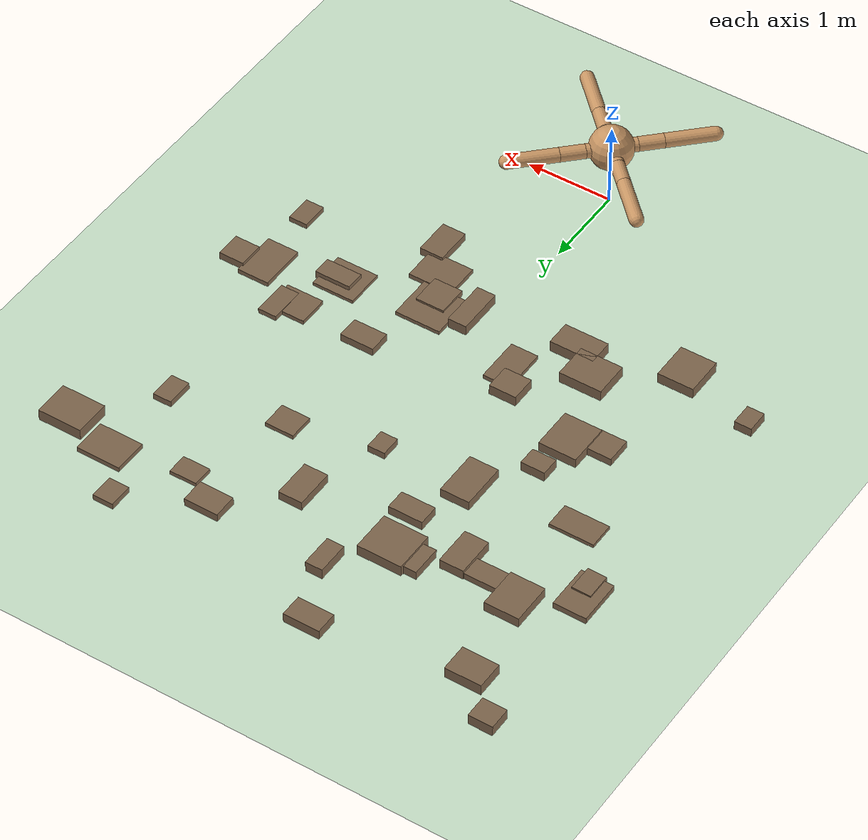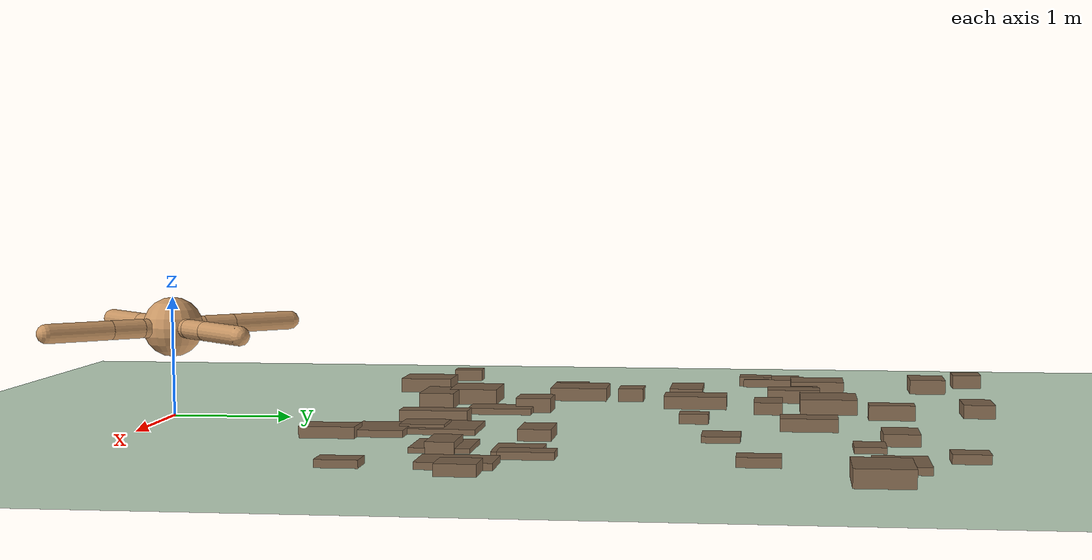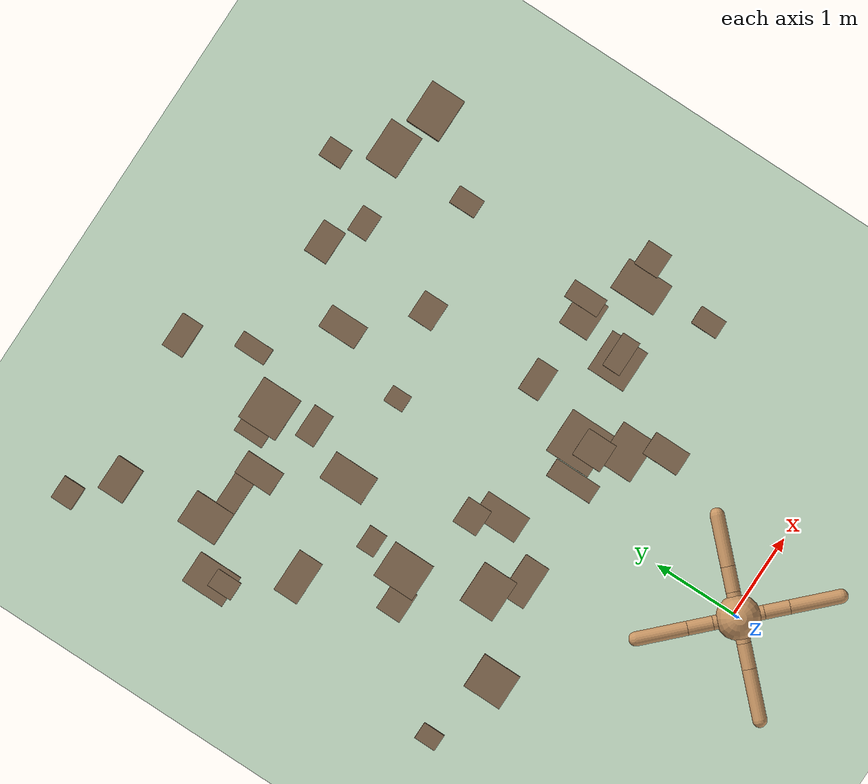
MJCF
<mujoco model="ant_rough">
  <compiler angle="degree" coordinate="local" inertiafromgeom="true"/>
  <option integrator="RK4" timestep="0.01"/>
  <custom>
    <numeric data="0.0 0.0 0.55 1.0 0.0 0.0 0.0 0.0 1.0 0.0 -1.0 0.0 -1.0 0.0 1.0" name="init_qpos"/>
  </custom>
  <default>
    <joint armature="1" damping="1" limited="true"/>
    <geom conaffinity="0" condim="3" density="5.0" friction="1 0.5 0.5" margin="0.01" rgba="0.8 0.6 0.4 1"/>
  </default>
  <asset>
    <texture builtin="gradient" height="100" rgb1="1 1 1" rgb2="0 0 0" type="skybox" width="100"/>
    <texture builtin="flat" height="1278" mark="cross" markrgb="1 1 1" name="texgeom" random="0.01"
             rgb1="0.8 0.6 0.4" rgb2="0.8 0.6 0.4" type="cube" width="127"/>
    <texture builtin="checker" height="100" name="texplane" rgb1="0 0 0" rgb2="0.8 0.8 0.8" type="2d" width="100"/>
    <material name="MatPlane" reflectance="0.5" shininess="1" specular="1" texrepeat="60 60" texture="texplane"/>
    <material name="geom" texture="texgeom" texuniform="true"/>
  </asset>
  <worldbody>
    <light cutoff="100" diffuse="1 1 1" dir="-0 0 -1.3" directional="true" exponent="1" pos="0 0 1.3" specular=".1 .1 .1"/>
    <geom conaffinity="1" condim="3" material="MatPlane" name="floor" pos="0 0 0" rgba="0.8 0.9 0.8 1" size="40 40 40" type="plane"/>
    <geom type="box" conaffinity="1" condim="3" pos="-0.75 6.73 0.057" size="0.21 0.13 0.057" rgba="0.50 0.40 0.30 1"/>
    <geom type="box" conaffinity="1" condim="3" pos="-2.06 1.82 0.063" size="0.21 0.23 0.063" rgba="0.50 0.40 0.30 1"/>
    <geom type="box" conaffinity="1" condim="3" pos="-2.88 6.83 0.062" size="0.14 0.13 0.062" rgba="0.50 0.40 0.30 1"/>
    <geom type="box" conaffinity="1" condim="3" pos="-1.90 3.17 0.046" size="0.18 0.15 0.046" rgba="0.50 0.40 0.30 1"/>
    <geom type="box" conaffinity="1" condim="3" pos="0.67 2.27 0.035" size="0.17 0.18 0.035" rgba="0.50 0.40 0.30 1"/>
    <geom type="box" conaffinity="1" condim="3" pos="1.71 2.60 0.046" size="0.21 0.11 0.046" rgba="0.50 0.40 0.30 1"/>
    <geom type="box" conaffinity="1" condim="3" pos="0.65 2.44 0.023" size="0.27 0.27 0.023" rgba="0.50 0.40 0.30 1"/>
    <geom type="box" conaffinity="1" condim="3" pos="1.85 3.18 0.025" size="0.22 0.18 0.025" rgba="0.50 0.40 0.30 1"/>
    <geom type="box" conaffinity="1" condim="3" pos="-2.27 4.22 0.022" size="0.26 0.15 0.022" rgba="0.50 0.40 0.30 1"/>
    <geom type="box" conaffinity="1" condim="3" pos="0.98 3.21 0.046" size="0.20 0.13 0.046" rgba="0.50 0.40 0.30 1"/>
    <geom type="box" conaffinity="1" condim="3" pos="2.82 5.76 0.067" size="0.26 0.21 0.067" rgba="0.50 0.40 0.30 1"/>
    <geom type="box" conaffinity="1" condim="3" pos="2.53 1.99 0.030" size="0.11 0.16 0.030" rgba="0.50 0.40 0.30 1"/>
    <geom type="box" conaffinity="1" condim="3" pos="-0.67 2.99 0.061" size="0.16 0.15 0.061" rgba="0.50 0.40 0.30 1"/>
    <geom type="box" conaffinity="1" condim="3" pos="0.26 2.28 0.060" size="0.11 0.28 0.060" rgba="0.50 0.40 0.30 1"/>
    <geom type="box" conaffinity="1" condim="3" pos="1.63 2.59 0.020" size="0.25 0.23 0.020" rgba="0.50 0.40 0.30 1"/>
    <geom type="box" conaffinity="1" condim="3" pos="1.37 5.74 0.024" size="0.16 0.12 0.024" rgba="0.50 0.40 0.30 1"/>
    <geom type="box" conaffinity="1" condim="3" pos="2.18 4.93 0.037" size="0.11 0.16 0.037" rgba="0.50 0.40 0.30 1"/>
    <geom type="box" conaffinity="1" condim="3" pos="-1.05 5.51 0.052" size="0.26 0.18 0.052" rgba="0.50 0.40 0.30 1"/>
    <geom type="box" conaffinity="1" condim="3" pos="-2.28 5.42 0.058" size="0.20 0.24 0.058" rgba="0.50 0.40 0.30 1"/>
    <geom type="box" conaffinity="1" condim="3" pos="-0.04 4.38 0.041" size="0.10 0.12 0.041" rgba="0.50 0.40 0.30 1"/>
    <geom type="box" conaffinity="1" condim="3" pos="-2.81 5.00 0.036" size="0.19 0.26 0.036" rgba="0.50 0.40 0.30 1"/>
    <geom type="box" conaffinity="1" condim="3" pos="-1.50 3.76 0.058" size="0.14 0.11 0.058" rgba="0.50 0.40 0.30 1"/>
    <geom type="box" conaffinity="1" condim="3" pos="-1.26 2.39 0.066" size="0.25 0.21 0.066" rgba="0.50 0.40 0.30 1"/>
    <geom type="box" conaffinity="1" condim="3" pos="2.23 5.92 0.029" size="0.26 0.20 0.029" rgba="0.50 0.40 0.30 1"/>
    <geom type="box" conaffinity="1" condim="3" pos="1.84 6.43 0.036" size="0.12 0.14 0.036" rgba="0.50 0.40 0.30 1"/>
    <geom type="box" conaffinity="1" condim="3" pos="-0.44 6.00 0.063" size="0.10 0.19 0.063" rgba="0.50 0.40 0.30 1"/>
    <geom type="box" conaffinity="1" condim="3" pos="-0.50 2.72 0.026" size="0.16 0.27 0.026" rgba="0.50 0.40 0.30 1"/>
    <geom type="box" conaffinity="1" condim="3" pos="-1.06 4.35 0.055" size="0.17 0.27 0.055" rgba="0.50 0.40 0.30 1"/>
    <geom type="box" conaffinity="1" condim="3" pos="2.77 2.88 0.045" size="0.15 0.15 0.045" rgba="0.50 0.40 0.30 1"/>
    <geom type="box" conaffinity="1" condim="3" pos="-2.78 4.85 0.045" size="0.11 0.15 0.045" rgba="0.50 0.40 0.30 1"/>
    <geom type="box" conaffinity="1" condim="3" pos="2.45 2.82 0.027" size="0.19 0.28 0.027" rgba="0.50 0.40 0.30 1"/>
    <geom type="box" conaffinity="1" condim="3" pos="-1.55 5.20 0.058" size="0.14 0.23 0.058" rgba="0.50 0.40 0.30 1"/>
    <geom type="box" conaffinity="1" condim="3" pos="-0.79 4.98 0.052" size="0.20 0.12 0.052" rgba="0.50 0.40 0.30 1"/>
    <geom type="box" conaffinity="1" condim="3" pos="2.01 3.26 0.029" size="0.11 0.21 0.029" rgba="0.50 0.40 0.30 1"/>
    <geom type="box" conaffinity="1" condim="3" pos="1.07 1.59 0.046" size="0.14 0.22 0.046" rgba="0.50 0.40 0.30 1"/>
    <geom type="box" conaffinity="1" condim="3" pos="-1.95 5.30 0.039" size="0.27 0.12 0.039" rgba="0.50 0.40 0.30 1"/>
    <geom type="box" conaffinity="1" condim="3" pos="-0.95 2.12 0.066" size="0.26 0.15 0.066" rgba="0.50 0.40 0.30 1"/>
    <geom type="box" conaffinity="1" condim="3" pos="0.96 5.99 0.048" size="0.20 0.14 0.048" rgba="0.50 0.40 0.30 1"/>
    <geom type="box" conaffinity="1" condim="3" pos="-2.44 6.43 0.065" size="0.21 0.16 0.065" rgba="0.50 0.40 0.30 1"/>
    <geom type="box" conaffinity="1" condim="3" pos="-0.90 5.49 0.065" size="0.26 0.24 0.065" rgba="0.50 0.40 0.30 1"/>
    <geom type="box" conaffinity="1" condim="3" pos="0.85 1.96 0.028" size="0.26 0.21 0.028" rgba="0.50 0.40 0.30 1"/>
    <geom type="box" conaffinity="1" condim="3" pos="-2.94 2.06 0.053" size="0.10 0.13 0.053" rgba="0.50 0.40 0.30 1"/>
    <geom type="box" conaffinity="1" condim="3" pos="0.29 5.31 0.053" size="0.14 0.23 0.053" rgba="0.50 0.40 0.30 1"/>
    <geom type="box" conaffinity="1" condim="3" pos="-1.58 3.29 0.057" size="0.22 0.25 0.057" rgba="0.50 0.40 0.30 1"/>
    <geom type="box" conaffinity="1" condim="3" pos="0.95 4.63 0.025" size="0.17 0.15 0.025" rgba="0.50 0.40 0.30 1"/>
    <body name="torso" pos="0 0 0.75">
      <camera name="forward_cam" mode="fixed" pos="0 0.5 0.5" xyaxes="1 0 0 0 0.342 0.940"/>
      <camera name="track" mode="trackcom" pos="0 -3 0.3" xyaxes="1 0 0 0 0 1"/>
      <geom name="torso_geom" pos="0 0 0" size="0.25" type="sphere"/>
      <joint armature="0" damping="0" limited="false" margin="0.01" name="root" pos="0 0 0" type="free"/>
      <body name="front_left_leg" pos="0 0 0">
        <geom fromto="0.0 0.0 0.0 0.2 0.2 0.0" name="aux_1_geom" size="0.08" type="capsule"/>
        <body name="aux_1" pos="0.2 0.2 0">
          <joint axis="0 0 1" name="hip_1" pos="0.0 0.0 0.0" range="-30 30" type="hinge"/>
          <geom fromto="0.0 0.0 0.0 0.2 0.2 0.0" name="left_leg_geom" size="0.08" type="capsule"/>
          <body pos="0.2 0.2 0">
            <joint axis="-1 1 0" name="ankle_1" pos="0.0 0.0 0.0" range="30 70" type="hinge"/>
            <geom fromto="0.0 0.0 0.0 0.4 0.4 0.0" name="left_ankle_geom" size="0.08" type="capsule"/>
          </body>
        </body>
      </body>
      <body name="front_right_leg" pos="0 0 0">
        <geom fromto="0.0 0.0 0.0 -0.2 0.2 0.0" name="aux_2_geom" size="0.08" type="capsule"/>
        <body name="aux_2" pos="-0.2 0.2 0">
          <joint axis="0 0 1" name="hip_2" pos="0.0 0.0 0.0" range="-30 30" type="hinge"/>
          <geom fromto="0.0 0.0 0.0 -0.2 0.2 0.0" name="right_leg_geom" size="0.08" type="capsule"/>
          <body pos="-0.2 0.2 0">
            <joint axis="1 1 0" name="ankle_2" pos="0.0 0.0 0.0" range="-70 -30" type="hinge"/>
            <geom fromto="0.0 0.0 0.0 -0.4 0.4 0.0" name="right_ankle_geom" size="0.08" type="capsule"/>
          </body>
        </body>
      </body>
      <body name="back_leg" pos="0 0 0">
        <geom fromto="0.0 0.0 0.0 -0.2 -0.2 0.0" name="aux_3_geom" size="0.08" type="capsule"/>
        <body name="aux_3" pos="-0.2 -0.2 0">
          <joint axis="0 0 1" name="hip_3" pos="0.0 0.0 0.0" range="-30 30" type="hinge"/>
          <geom fromto="0.0 0.0 0.0 -0.2 -0.2 0.0" name="back_leg_geom" size="0.08" type="capsule"/>
          <body pos="-0.2 -0.2 0">
            <joint axis="-1 1 0" name="ankle_3" pos="0.0 0.0 0.0" range="-70 -30" type="hinge"/>
            <geom fromto="0.0 0.0 0.0 -0.4 -0.4 0.0" name="third_ankle_geom" size="0.08" type="capsule"/>
          </body>
        </body>
      </body>
      <body name="right_back_leg" pos="0 0 0">
        <geom fromto="0.0 0.0 0.0 0.2 -0.2 0.0" name="aux_4_geom" size="0.08" type="capsule"/>
        <body name="aux_4" pos="0.2 -0.2 0">
          <joint axis="0 0 1" name="hip_4" pos="0.0 0.0 0.0" range="-30 30" type="hinge"/>
          <geom fromto="0.0 0.0 0.0 0.2 -0.2 0.0" name="rightback_leg_geom" size="0.08" type="capsule"/>
          <body pos="0.2 -0.2 0">
            <joint axis="1 1 0" name="ankle_4" pos="0.0 0.0 0.0" range="30 70" type="hinge"/>
            <geom fromto="0.0 0.0 0.0 0.4 -0.4 0.0" name="fourth_ankle_geom" size="0.08" type="capsule"/>
          </body>
        </body>
      </body>
    </body>
  </worldbody>
  <actuator>
    <motor ctrllimited="true" ctrlrange="-1.0 1.0" joint="hip_4" gear="150"/>
    <motor ctrllimited="true" ctrlrange="-1.0 1.0" joint="ankle_4" gear="150"/>
    <motor ctrllimited="true" ctrlrange="-1.0 1.0" joint="hip_1" gear="150"/>
    <motor ctrllimited="true" ctrlrange="-1.0 1.0" joint="ankle_1" gear="150"/>
    <motor ctrllimited="true" ctrlrange="-1.0 1.0" joint="hip_2" gear="150"/>
    <motor ctrllimited="true" ctrlrange="-1.0 1.0" joint="ankle_2" gear="150"/>
    <motor ctrllimited="true" ctrlrange="-1.0 1.0" joint="hip_3" gear="150"/>
    <motor ctrllimited="true" ctrlrange="-1.0 1.0" joint="ankle_3" gear="150"/>
  </actuator>
</mujoco>
